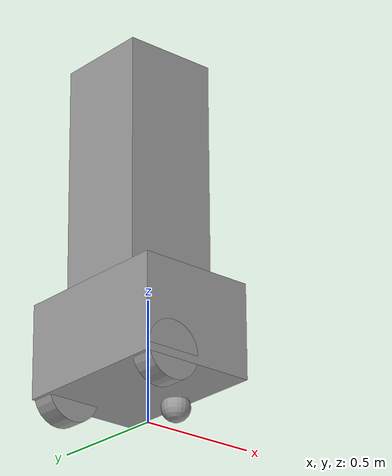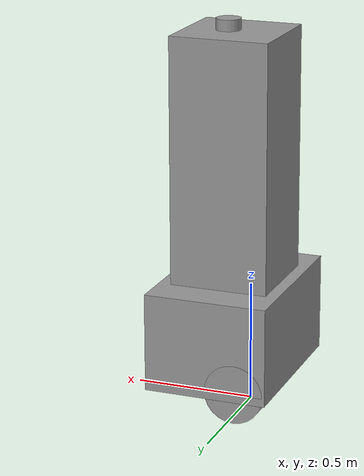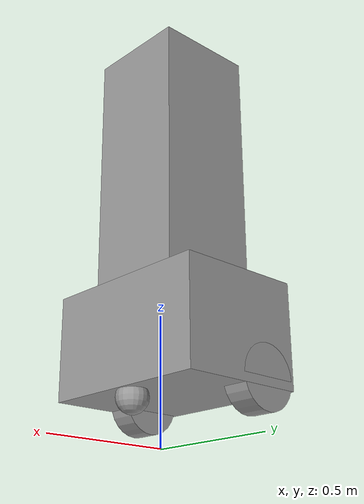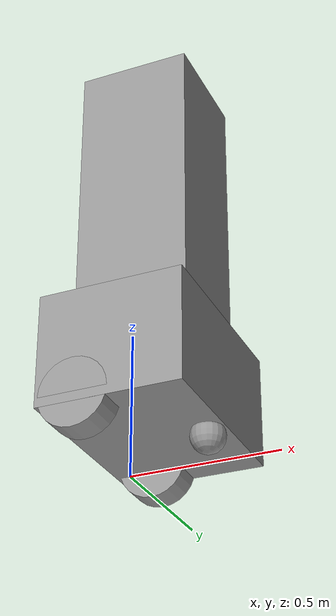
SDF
<?xml version='1.0'?>
<sdf version='1.7'>
  <model name='nuglebot'>
    <link name='base_link'>
      <inertial>
        <mass>20</mass>
        <inertia>
          <ixx>1.08333</ixx>
          <ixy>0</ixy>
          <ixz>0</ixz>
          <iyy>0.683333</iyy>
          <iyz>0</iyz>
          <izz>1.23333</izz>
        </inertia>
        <pose>0 0 0 0 -0 0</pose>
      </inertial>
      <pose>0.033333 0.1 0.367223 0 -0 0</pose>
      <gravity>1</gravity>
      <self_collide>0</self_collide>
      <kinematic>0</kinematic>
      <enable_wind>0</enable_wind>
      <visual name='visual'>
        <pose>0 0 0 0 -0 0</pose>
        <geometry>
          <box>
            <size>0.5 0.7 0.4</size>
          </box>
        </geometry>
        <material>
          <lighting>1</lighting>
          <script>
            <uri>file://media/materials/scripts/gazebo.material</uri>
            <name>Gazebo/Grey</name>
          </script>
          <shader type='pixel'>
            <normal_map>__default__</normal_map>
          </shader>
          <ambient>0.3 0.3 0.3 1</ambient>
          <diffuse>0.7 0.7 0.7 1</diffuse>
          <specular>0.01 0.01 0.01 1</specular>
          <emissive>0 0 0 1</emissive>
        </material>
        <transparency>0</transparency>
        <cast_shadows>1</cast_shadows>
      </visual>
      <collision name='collision'>
        <laser_retro>0</laser_retro>
        <max_contacts>10</max_contacts>
        <pose>0 0 0 0 -0 0</pose>
        <geometry>
          <box>
            <size>0.5 0.7 0.4</size>
          </box>
        </geometry>
        <surface>
          <friction>
            <ode>
              <mu>1</mu>
              <mu2>1</mu2>
              <fdir1>0 0 0</fdir1>
              <slip1>0</slip1>
              <slip2>0</slip2>
            </ode>
            <torsional>
              <coefficient>1</coefficient>
              <patch_radius>0</patch_radius>
              <surface_radius>0</surface_radius>
              <use_patch_radius>1</use_patch_radius>
              <ode>
                <slip>0</slip>
              </ode>
            </torsional>
          </friction>
          <bounce>
            <restitution_coefficient>0</restitution_coefficient>
            <threshold>1e+06</threshold>
          </bounce>
          <contact>
            <collide_without_contact>0</collide_without_contact>
            <collide_without_contact_bitmask>1</collide_without_contact_bitmask>
            <collide_bitmask>1</collide_bitmask>
            <ode>
              <soft_cfm>0</soft_cfm>
              <soft_erp>0.2</soft_erp>
              <kp>1e+13</kp>
              <kd>1</kd>
              <max_vel>0.01</max_vel>
              <min_depth>0</min_depth>
            </ode>
            <bullet>
              <split_impulse>1</split_impulse>
              <split_impulse_penetration_threshold>-0.01</split_impulse_penetration_threshold>
              <soft_cfm>0</soft_cfm>
              <soft_erp>0.2</soft_erp>
              <kp>1e+13</kp>
              <kd>1</kd>
            </bullet>
          </contact>
        </surface>
      </collision>
    </link>
    <link name='body_link'>
      <inertial>
        <mass>1</mass>
        <inertia>
          <ixx>0.166667</ixx>
          <ixy>0</ixy>
          <ixz>0</ixz>
          <iyy>0.166667</iyy>
          <iyz>0</iyz>
          <izz>0.166667</izz>
        </inertia>
        <pose>0 0 0 0 -0 0</pose>
      </inertial>
      <pose>0.033333 0.1 1.06722 0 -0 0</pose>
      <gravity>1</gravity>
      <self_collide>0</self_collide>
      <kinematic>0</kinematic>
      <enable_wind>0</enable_wind>
      <visual name='visual'>
        <pose>0 0 0 0 -0 0</pose>
        <geometry>
          <box>
            <size>0.4 0.4 1</size>
          </box>
        </geometry>
        <material>
          <lighting>1</lighting>
          <script>
            <uri>file://media/materials/scripts/gazebo.material</uri>
            <name>Gazebo/Grey</name>
          </script>
          <shader type='pixel'>
            <normal_map>__default__</normal_map>
          </shader>
          <ambient>0.3 0.3 0.3 1</ambient>
          <diffuse>0.7 0.7 0.7 1</diffuse>
          <specular>0.01 0.01 0.01 1</specular>
          <emissive>0 0 0 1</emissive>
        </material>
        <transparency>0</transparency>
        <cast_shadows>1</cast_shadows>
      </visual>
      <collision name='collision'>
        <laser_retro>0</laser_retro>
        <max_contacts>10</max_contacts>
        <pose>0 0 0 0 -0 0</pose>
        <geometry>
          <box>
            <size>0.4 0.4 1</size>
          </box>
        </geometry>
        <surface>
          <friction>
            <ode>
              <mu>1</mu>
              <mu2>1</mu2>
              <fdir1>0 0 0</fdir1>
              <slip1>0</slip1>
              <slip2>0</slip2>
            </ode>
            <torsional>
              <coefficient>1</coefficient>
              <patch_radius>0</patch_radius>
              <surface_radius>0</surface_radius>
              <use_patch_radius>1</use_patch_radius>
              <ode>
                <slip>0</slip>
              </ode>
            </torsional>
          </friction>
          <bounce>
            <restitution_coefficient>0</restitution_coefficient>
            <threshold>1e+06</threshold>
          </bounce>
          <contact>
            <collide_without_contact>0</collide_without_contact>
            <collide_without_contact_bitmask>1</collide_without_contact_bitmask>
            <collide_bitmask>1</collide_bitmask>
            <ode>
              <soft_cfm>0</soft_cfm>
              <soft_erp>0.2</soft_erp>
              <kp>1e+13</kp>
              <kd>1</kd>
              <max_vel>0.01</max_vel>
              <min_depth>0</min_depth>
            </ode>
            <bullet>
              <split_impulse>1</split_impulse>
              <split_impulse_penetration_threshold>-0.01</split_impulse_penetration_threshold>
              <soft_cfm>0</soft_cfm>
              <soft_erp>0.2</soft_erp>
              <kp>1e+13</kp>
              <kd>1</kd>
            </bullet>
          </contact>
        </surface>
      </collision>
    </link>
    <link name='wheel_right_link'>
      <inertial>
        <mass>5</mass>
        <inertia>
          <ixx>0.0221667</ixx>
          <ixy>0</ixy>
          <ixz>0</ixz>
          <iyy>0.0221667</iyy>
          <iyz>0</iyz>
          <izz>0.036</izz>
        </inertia>
        <pose>0 0 0 0 -0 0</pose>
      </inertial>
      <pose>-0.086667 -0.2 0.200556 -1.57 -0 0</pose>
      <gravity>1</gravity>
      <self_collide>0</self_collide>
      <kinematic>0</kinematic>
      <enable_wind>0</enable_wind>
      <visual name='visual'>
        <pose>0 0 0 0 -0 0</pose>
        <geometry>
          <cylinder>
            <radius>0.12</radius>
            <length>0.1</length>
          </cylinder>
        </geometry>
        <material>
          <lighting>1</lighting>
          <script>
            <uri>file://media/materials/scripts/gazebo.material</uri>
            <name>Gazebo/Grey</name>
          </script>
          <shader type='pixel'>
            <normal_map>__default__</normal_map>
          </shader>
          <ambient>0.3 0.3 0.3 1</ambient>
          <diffuse>0.7 0.7 0.7 1</diffuse>
          <specular>0.01 0.01 0.01 1</specular>
          <emissive>0 0 0 1</emissive>
        </material>
        <transparency>0</transparency>
        <cast_shadows>1</cast_shadows>
      </visual>
      <collision name='collision'>
        <laser_retro>0</laser_retro>
        <max_contacts>10</max_contacts>
        <pose>0 0 0 0 -0 0</pose>
        <geometry>
          <cylinder>
            <radius>0.12</radius>
            <length>0.1</length>
          </cylinder>
        </geometry>
        <surface>
          <friction>
            <ode>
              <mu>1</mu>
              <mu2>1</mu2>
              <fdir1>0 0 0</fdir1>
              <slip1>0</slip1>
              <slip2>0</slip2>
            </ode>
            <torsional>
              <coefficient>1</coefficient>
              <patch_radius>0</patch_radius>
              <surface_radius>0</surface_radius>
              <use_patch_radius>1</use_patch_radius>
              <ode>
                <slip>0</slip>
              </ode>
            </torsional>
          </friction>
          <bounce>
            <restitution_coefficient>0</restitution_coefficient>
            <threshold>1e+06</threshold>
          </bounce>
          <contact>
            <collide_without_contact>0</collide_without_contact>
            <collide_without_contact_bitmask>1</collide_without_contact_bitmask>
            <collide_bitmask>1</collide_bitmask>
            <ode>
              <soft_cfm>0</soft_cfm>
              <soft_erp>0.2</soft_erp>
              <kp>1e+13</kp>
              <kd>1</kd>
              <max_vel>0.01</max_vel>
              <min_depth>0</min_depth>
            </ode>
            <bullet>
              <split_impulse>1</split_impulse>
              <split_impulse_penetration_threshold>-0.01</split_impulse_penetration_threshold>
              <soft_cfm>0</soft_cfm>
              <soft_erp>0.2</soft_erp>
              <kp>1e+13</kp>
              <kd>1</kd>
            </bullet>
          </contact>
        </surface>
      </collision>
    </link>
    <link name='wheel_left_link'>
      <inertial>
        <mass>5</mass>
        <inertia>
          <ixx>0.0221667</ixx>
          <ixy>0</ixy>
          <ixz>0</ixz>
          <iyy>0.0221667</iyy>
          <iyz>0</iyz>
          <izz>0.036</izz>
        </inertia>
        <pose>0 0 0 0 -0 0</pose>
      </inertial>
      <pose>-0.086667 0.4 0.200556 1.57 -0 0</pose>
      <gravity>1</gravity>
      <self_collide>0</self_collide>
      <kinematic>0</kinematic>
      <enable_wind>0</enable_wind>
      <visual name='visual'>
        <pose>0 0 0 0 -0 0</pose>
        <geometry>
          <cylinder>
            <radius>0.12</radius>
            <length>0.1</length>
          </cylinder>
        </geometry>
        <material>
          <lighting>1</lighting>
          <script>
            <uri>file://media/materials/scripts/gazebo.material</uri>
            <name>Gazebo/Grey</name>
          </script>
          <shader type='pixel'>
            <normal_map>__default__</normal_map>
          </shader>
          <ambient>0.3 0.3 0.3 1</ambient>
          <diffuse>0.7 0.7 0.7 1</diffuse>
          <specular>0.01 0.01 0.01 1</specular>
          <emissive>0 0 0 1</emissive>
        </material>
        <transparency>0</transparency>
        <cast_shadows>1</cast_shadows>
      </visual>
      <collision name='collision'>
        <laser_retro>0</laser_retro>
        <max_contacts>10</max_contacts>
        <pose>0 0 0 0 -0 0</pose>
        <geometry>
          <cylinder>
            <radius>0.12</radius>
            <length>0.1</length>
          </cylinder>
        </geometry>
        <surface>
          <friction>
            <ode>
              <mu>1</mu>
              <mu2>1</mu2>
              <fdir1>0 0 0</fdir1>
              <slip1>0</slip1>
              <slip2>0</slip2>
            </ode>
            <torsional>
              <coefficient>1</coefficient>
              <patch_radius>0</patch_radius>
              <surface_radius>0</surface_radius>
              <use_patch_radius>1</use_patch_radius>
              <ode>
                <slip>0</slip>
              </ode>
            </torsional>
          </friction>
          <bounce>
            <restitution_coefficient>0</restitution_coefficient>
            <threshold>1e+06</threshold>
          </bounce>
          <contact>
            <collide_without_contact>0</collide_without_contact>
            <collide_without_contact_bitmask>1</collide_without_contact_bitmask>
            <collide_bitmask>1</collide_bitmask>
            <ode>
              <soft_cfm>0</soft_cfm>
              <soft_erp>0.2</soft_erp>
              <kp>1e+13</kp>
              <kd>1</kd>
              <max_vel>0.01</max_vel>
              <min_depth>0</min_depth>
            </ode>
            <bullet>
              <split_impulse>1</split_impulse>
              <split_impulse_penetration_threshold>-0.01</split_impulse_penetration_threshold>
              <soft_cfm>0</soft_cfm>
              <soft_erp>0.2</soft_erp>
              <kp>1e+13</kp>
              <kd>1</kd>
            </bullet>
          </contact>
        </surface>
      </collision>
    </link>
    <link name='caster_wheel_link'>
      <inertial>
        <mass>3</mass>
        <inertia>
          <ixx>0.00432</ixx>
          <ixy>0</ixy>
          <ixz>0</ixz>
          <iyy>0.00432</iyy>
          <iyz>0</iyz>
          <izz>0.00432</izz>
        </inertia>
        <pose>0 0 0 0 -0 0</pose>
      </inertial>
      <pose>0.223333 0.1 0.140556 0 -0 0</pose>
      <gravity>1</gravity>
      <self_collide>0</self_collide>
      <kinematic>0</kinematic>
      <enable_wind>0</enable_wind>
      <visual name='visual'>
        <pose>0 0 0 0 -0 0</pose>
        <geometry>
          <sphere>
            <radius>0.06</radius>
          </sphere>
        </geometry>
        <material>
          <lighting>1</lighting>
          <script>
            <uri>file://media/materials/scripts/gazebo.material</uri>
            <name>Gazebo/Grey</name>
          </script>
          <shader type='pixel'>
            <normal_map>__default__</normal_map>
          </shader>
          <ambient>0.3 0.3 0.3 1</ambient>
          <diffuse>0.7 0.7 0.7 1</diffuse>
          <specular>0.01 0.01 0.01 1</specular>
          <emissive>0 0 0 1</emissive>
        </material>
        <transparency>0</transparency>
        <cast_shadows>1</cast_shadows>
      </visual>
      <collision name='collision'>
        <laser_retro>0</laser_retro>
        <max_contacts>10</max_contacts>
        <pose>0 0 0 0 -0 0</pose>
        <geometry>
          <sphere>
            <radius>0.06</radius>
          </sphere>
        </geometry>
        <surface>
          <friction>
            <ode>
              <mu>1</mu>
              <mu2>1</mu2>
              <fdir1>0 0 0</fdir1>
              <slip1>0</slip1>
              <slip2>0</slip2>
            </ode>
            <torsional>
              <coefficient>1</coefficient>
              <patch_radius>0</patch_radius>
              <surface_radius>0</surface_radius>
              <use_patch_radius>1</use_patch_radius>
              <ode>
                <slip>0</slip>
              </ode>
            </torsional>
          </friction>
          <bounce>
            <restitution_coefficient>0</restitution_coefficient>
            <threshold>1e+06</threshold>
          </bounce>
          <contact>
            <collide_without_contact>0</collide_without_contact>
            <collide_without_contact_bitmask>1</collide_without_contact_bitmask>
            <collide_bitmask>1</collide_bitmask>
            <ode>
              <soft_cfm>0</soft_cfm>
              <soft_erp>0.2</soft_erp>
              <kp>1e+13</kp>
              <kd>1</kd>
              <max_vel>0.01</max_vel>
              <min_depth>0</min_depth>
            </ode>
            <bullet>
              <split_impulse>1</split_impulse>
              <split_impulse_penetration_threshold>-0.01</split_impulse_penetration_threshold>
              <soft_cfm>0</soft_cfm>
              <soft_erp>0.2</soft_erp>
              <kp>1e+13</kp>
              <kd>1</kd>
            </bullet>
          </contact>
        </surface>
      </collision>
    </link>
    <link name='laser_link'>
      <inertial>
        <mass>0.5</mass>
        <inertia>
          <ixx>0.00041667</ixx>
          <ixy>0</ixy>
          <ixz>0</ixz>
          <iyy>0.00041667</iyy>
          <iyz>0</iyz>
          <izz>0.000625</izz>
        </inertia>
        <pose>0 0 0 0 -0 0</pose>
      </inertial>
      <pose>0.063333 0.1 1.58789 0 -0 0</pose>
      <gravity>1</gravity>
      <self_collide>0</self_collide>
      <kinematic>0</kinematic>
      <enable_wind>0</enable_wind>
      <visual name='visual'>
        <pose>0 0 0 0 -0 0</pose>
        <geometry>
          <cylinder>
            <radius>0.05</radius>
            <length>0.05</length>
          </cylinder>
        </geometry>
        <material>
          <lighting>1</lighting>
          <script>
            <uri>file://media/materials/scripts/gazebo.material</uri>
            <name>Gazebo/Grey</name>
          </script>
          <shader type='pixel'>
            <normal_map>__default__</normal_map>
          </shader>
          <ambient>0.3 0.3 0.3 1</ambient>
          <diffuse>0.7 0.7 0.7 1</diffuse>
          <specular>0.01 0.01 0.01 1</specular>
          <emissive>0 0 0 1</emissive>
        </material>
        <transparency>0</transparency>
        <cast_shadows>1</cast_shadows>
      </visual>
    <sensor name="rplidar_a2" type="ray">
        <always_on>1</always_on>
        <visualize>0</visualize>
        <pose>-0.032 0 0.171 0 0 0</pose>
        <update_rate>1800</update_rate>
        <ray>
          <scan>
            <horizontal>
              <samples>360</samples>
              <resolution>1.000000</resolution>
              <min_angle>0.000000</min_angle>
              <max_angle>6.280000</max_angle>
            </horizontal>
          </scan>
          <range>
            <min>0.120000</min>
            <max>12.0</max>
            <resolution>0.015000</resolution>
          </range>
          <noise>
            <type>gaussian</type>
            <mean>0.0</mean>
            <stddev>0.01</stddev>
          </noise>
        </ray>
      </sensor>
      <collision name='collision'>
        <laser_retro>0</laser_retro>
        <max_contacts>10</max_contacts>
        <pose>0 0 0 0 -0 0</pose>
        <geometry>
          <cylinder>
            <radius>0.05</radius>
            <length>0.05</length>
          </cylinder>
        </geometry>
        <surface>
          <friction>
            <ode>
              <mu>1</mu>
              <mu2>1</mu2>
              <fdir1>0 0 0</fdir1>
              <slip1>0</slip1>
              <slip2>0</slip2>
            </ode>
            <torsional>
              <coefficient>1</coefficient>
              <patch_radius>0</patch_radius>
              <surface_radius>0</surface_radius>
              <use_patch_radius>1</use_patch_radius>
              <ode>
                <slip>0</slip>
              </ode>
            </torsional>
          </friction>
          <bounce>
            <restitution_coefficient>0</restitution_coefficient>
            <threshold>1e+06</threshold>
          </bounce>
          <contact>
            <collide_without_contact>0</collide_without_contact>
            <collide_without_contact_bitmask>1</collide_without_contact_bitmask>
            <collide_bitmask>1</collide_bitmask>
            <ode>
              <soft_cfm>0</soft_cfm>
              <soft_erp>0.2</soft_erp>
              <kp>1e+13</kp>
              <kd>1</kd>
              <max_vel>0.01</max_vel>
              <min_depth>0</min_depth>
            </ode>
            <bullet>
              <split_impulse>1</split_impulse>
              <split_impulse_penetration_threshold>-0.01</split_impulse_penetration_threshold>
              <soft_cfm>0</soft_cfm>
              <soft_erp>0.2</soft_erp>
              <kp>1e+13</kp>
              <kd>1</kd>
            </bullet>
          </contact>
        </surface>
      </collision>
    </link>
    <joint name='base_joint' type='fixed'>
      <parent>base_link</parent>
      <child>body_link</child>
      <pose>0 0 0 0 -0 0</pose>
      <physics>
        <ode>
          <limit>
            <cfm>0</cfm>
            <erp>0.2</erp>
          </limit>
          <suspension>
            <cfm>0</cfm>
            <erp>0.2</erp>
          </suspension>
        </ode>
      </physics>
    </joint>
    <joint name='wheel_right_joint' type='revolute'>
      <parent>base_link</parent>
      <child>wheel_right_link</child>
      <pose>0 0 0 0 -0 0</pose>
      <axis>
        <xyz>1 0 0</xyz>
        <limit>
          <lower>-1.79769e+308</lower>
          <upper>1.79769e+308</upper>
          <effort>-1</effort>
          <velocity>-1</velocity>
        </limit>
        <dynamics>
          <spring_reference>0</spring_reference>
          <spring_stiffness>0</spring_stiffness>
          <damping>0</damping>
          <friction>0</friction>
        </dynamics>
      </axis>
      <physics>
        <ode>
          <limit>
            <cfm>0</cfm>
            <erp>0.2</erp>
          </limit>
          <suspension>
            <cfm>0</cfm>
            <erp>0.2</erp>
          </suspension>
        </ode>
      </physics>
    </joint>
    <joint name='wheel_left_joint' type='revolute'>
      <parent>base_link</parent>
      <child>wheel_left_link</child>
      <pose>0 0 0 0 -0 0</pose>
      <axis>
        <xyz>1 0 0</xyz>
        <limit>
          <lower>-1.79769e+308</lower>
          <upper>1.79769e+308</upper>
          <effort>-1</effort>
          <velocity>-1</velocity>
        </limit>
        <dynamics>
          <spring_reference>0</spring_reference>
          <spring_stiffness>0</spring_stiffness>
          <damping>0</damping>
          <friction>0</friction>
        </dynamics>
      </axis>
      <physics>
        <ode>
          <limit>
            <cfm>0</cfm>
            <erp>0.2</erp>
          </limit>
          <suspension>
            <cfm>0</cfm>
            <erp>0.2</erp>
          </suspension>
        </ode>
      </physics>
    </joint>
    <joint name='caster_wheel_joint' type='ball'>
      <parent>base_link</parent>
      <child>caster_wheel_link</child>
      <pose>0 0 0 0 -0 0</pose>
      <physics>
        <ode>
          <limit>
            <cfm>0</cfm>
            <erp>0.2</erp>
          </limit>
          <suspension>
            <cfm>0</cfm>
            <erp>0.2</erp>
          </suspension>
        </ode>
      </physics>
    </joint>
    <joint name='laser_joint' type='fixed'>
      <parent>body_link</parent>
      <child>laser_link</child>
      <pose>0 0 0 0 -0 0</pose>
      <physics>
        <ode>
          <limit>
            <cfm>0</cfm>
            <erp>0.2</erp>
          </limit>
          <suspension>
            <cfm>0</cfm>
            <erp>0.2</erp>
          </suspension>
        </ode>
      </physics>
    </joint>
    <static>0</static>
    <allow_auto_disable>1</allow_auto_disable>
  </model>
</sdf>
